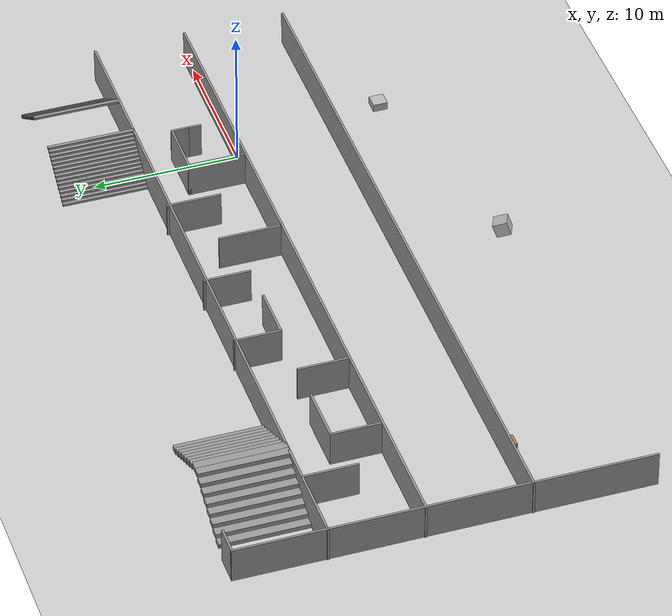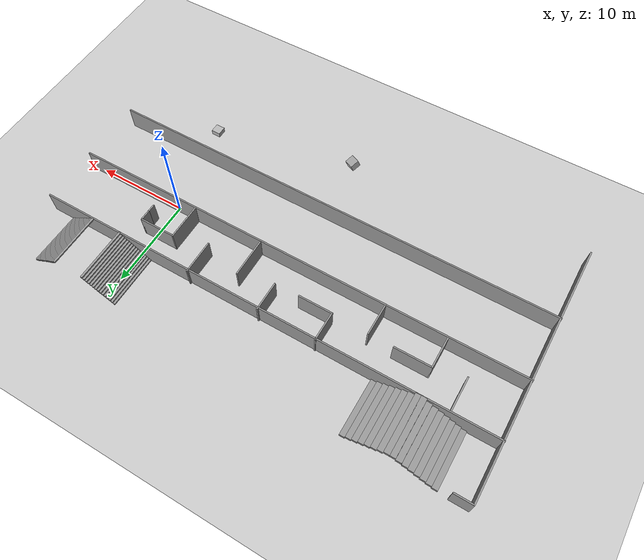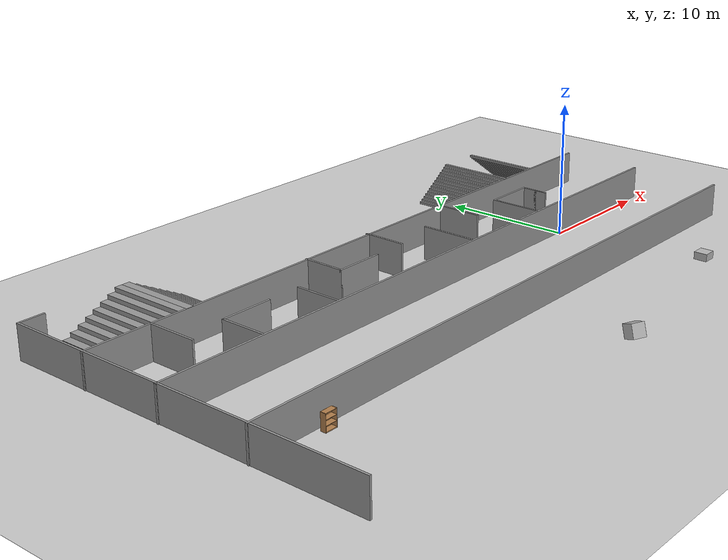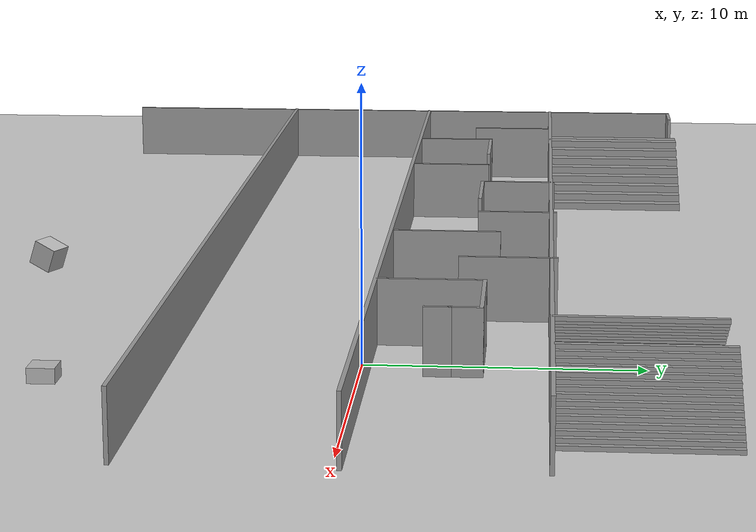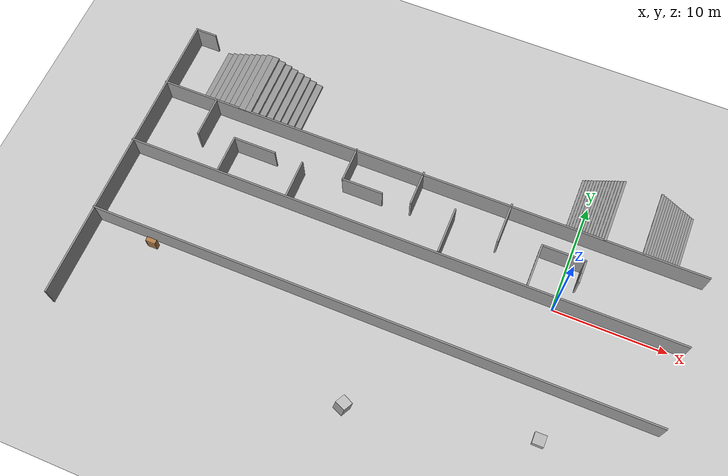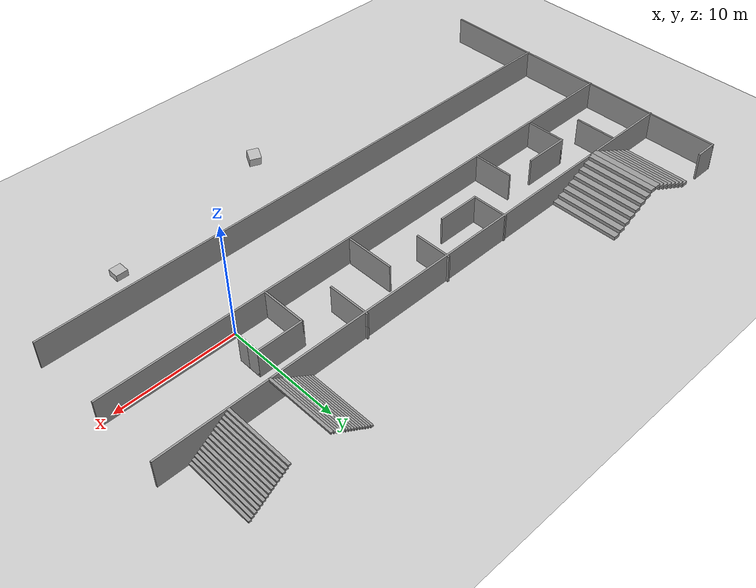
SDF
<sdf version="1.7">
 <world name="default">
  <model name="ground_plane">
   <static>1</static>
   <link name="link">
    <collision name="collision">
     <geometry><plane><normal>0 0 1</normal><size>100 100</size></plane></geometry>
     <surface>
      <contact><collide_bitmask>65535</collide_bitmask></contact>
      <friction><ode><mu>100</mu><mu2>50</mu2></ode></friction>
     </surface>
    </collision>
    <visual name="visual">
     <cast_shadows>0</cast_shadows>
     <geometry><plane><normal>0 0 1</normal><size>100 100</size></plane></geometry>
     <material>
      <script><uri>file://media/materials/scripts/gazebo.material</uri><name>Gazebo/Grey</name></script>
     </material>
    </visual>
   </link>
  </model>
  <model name="Parkour_0">
   <pose>2.61354 -1.10314 0 0 -0 0</pose>
   <link name="Stairs_0">
    <visual name="Stairs_0_Visual_0">
     <pose>6.1312 10.7342 0.083333 0 -0 -1.5708</pose>
     <geometry><box><size>5.922 0.233333 0.166667</size></box></geometry>
     <material>
      <script><uri>file://media/materials/scripts/gazebo.material</uri><name>Gazebo/Grey</name></script>
      <ambient>1 1 1 1</ambient>
     </material>
     <meta><layer>0</layer></meta>
    </visual>
    <collision name="Stairs_0_Collision_0">
     <geometry><box><size>5.922 0.233333 0.166667</size></box></geometry>
     <pose>6.1312 10.7342 0.083333 0 -0 -1.5708</pose>
    </collision>
    <visual name="Stairs_0_Visual_1">
     <pose>5.89787 10.7342 0.25 0 -0 -1.5708</pose>
     <geometry><box><size>5.922 0.233333 0.166667</size></box></geometry>
     <material>
      <script><uri>file://media/materials/scripts/gazebo.material</uri><name>Gazebo/Grey</name></script>
      <ambient>1 1 1 1</ambient>
     </material>
     <meta><layer>0</layer></meta>
    </visual>
    <collision name="Stairs_0_Collision_1">
     <geometry><box><size>5.922 0.233333 0.166667</size></box></geometry>
     <pose>5.89787 10.7342 0.25 0 -0 -1.5708</pose>
    </collision>
    <visual name="Stairs_0_Visual_2">
     <pose>5.66454 10.7342 0.416667 0 -0 -1.5708</pose>
     <geometry><box><size>5.922 0.233333 0.166667</size></box></geometry>
     <material>
      <script><uri>file://media/materials/scripts/gazebo.material</uri><name>Gazebo/Grey</name></script>
      <ambient>1 1 1 1</ambient>
     </material>
     <meta><layer>0</layer></meta>
    </visual>
    <collision name="Stairs_0_Collision_2">
     <geometry><box><size>5.922 0.233333 0.166667</size></box></geometry>
     <pose>5.66454 10.7342 0.416667 0 -0 -1.5708</pose>
    </collision>
    <visual name="Stairs_0_Visual_3">
     <pose>5.43121 10.7342 0.583333 0 -0 -1.5708</pose>
     <geometry><box><size>5.922 0.233333 0.166667</size></box></geometry>
     <material>
      <script><uri>file://media/materials/scripts/gazebo.material</uri><name>Gazebo/Grey</name></script>
      <ambient>1 1 1 1</ambient>
     </material>
     <meta><layer>0</layer></meta>
    </visual>
    <collision name="Stairs_0_Collision_3">
     <geometry><box><size>5.922 0.233333 0.166667</size></box></geometry>
     <pose>5.43121 10.7342 0.583333 0 -0 -1.5708</pose>
    </collision>
    <visual name="Stairs_0_Visual_4">
     <pose>5.19787 10.7342 0.75 0 -0 -1.5708</pose>
     <geometry><box><size>5.922 0.233333 0.166667</size></box></geometry>
     <material>
      <script><uri>file://media/materials/scripts/gazebo.material</uri><name>Gazebo/Grey</name></script>
      <ambient>1 1 1 1</ambient>
     </material>
     <meta><layer>0</layer></meta>
    </visual>
    <collision name="Stairs_0_Collision_4">
     <geometry><box><size>5.922 0.233333 0.166667</size></box></geometry>
     <pose>5.19787 10.7342 0.75 0 -0 -1.5708</pose>
    </collision>
    <visual name="Stairs_0_Visual_5">
     <pose>4.96454 10.7342 0.916667 0 -0 -1.5708</pose>
     <geometry><box><size>5.922 0.233333 0.166667</size></box></geometry>
     <material>
      <script><uri>file://media/materials/scripts/gazebo.material</uri><name>Gazebo/Grey</name></script>
      <ambient>1 1 1 1</ambient>
     </material>
     <meta><layer>0</layer></meta>
    </visual>
    <collision name="Stairs_0_Collision_5">
     <geometry><box><size>5.922 0.233333 0.166667</size></box></geometry>
     <pose>4.96454 10.7342 0.916667 0 -0 -1.5708</pose>
    </collision>
    <visual name="Stairs_0_Visual_6">
     <pose>4.73121 10.7342 1.08333 0 -0 -1.5708</pose>
     <geometry><box><size>5.922 0.233333 0.166667</size></box></geometry>
     <material>
      <script><uri>file://media/materials/scripts/gazebo.material</uri><name>Gazebo/Grey</name></script>
      <ambient>1 1 1 1</ambient>
     </material>
     <meta><layer>0</layer></meta>
    </visual>
    <collision name="Stairs_0_Collision_6">
     <geometry><box><size>5.922 0.233333 0.166667</size></box></geometry>
     <pose>4.73121 10.7342 1.08333 0 -0 -1.5708</pose>
    </collision>
    <visual name="Stairs_0_Visual_7">
     <pose>4.49787 10.7342 1.25 0 -0 -1.5708</pose>
     <geometry><box><size>5.922 0.233333 0.166667</size></box></geometry>
     <material>
      <script><uri>file://media/materials/scripts/gazebo.material</uri><name>Gazebo/Grey</name></script>
      <ambient>1 1 1 1</ambient>
     </material>
     <meta><layer>0</layer></meta>
    </visual>
    <collision name="Stairs_0_Collision_7">
     <geometry><box><size>5.922 0.233333 0.166667</size></box></geometry>
     <pose>4.49787 10.7342 1.25 0 -0 -1.5708</pose>
    </collision>
    <visual name="Stairs_0_Visual_8">
     <pose>4.26454 10.7342 1.41667 0 -0 -1.5708</pose>
     <geometry><box><size>5.922 0.233333 0.166667</size></box></geometry>
     <material>
      <script><uri>file://media/materials/scripts/gazebo.material</uri><name>Gazebo/Grey</name></script>
      <ambient>1 1 1 1</ambient>
     </material>
     <meta><layer>0</layer></meta>
    </visual>
    <collision name="Stairs_0_Collision_8">
     <geometry><box><size>5.922 0.233333 0.166667</size></box></geometry>
     <pose>4.26454 10.7342 1.41667 0 -0 -1.5708</pose>
    </collision>
    <visual name="Stairs_0_Visual_9">
     <pose>4.0312 10.7342 1.58333 0 -0 -1.5708</pose>
     <geometry><box><size>5.922 0.233333 0.166667</size></box></geometry>
     <material>
      <script><uri>file://media/materials/scripts/gazebo.material</uri><name>Gazebo/Grey</name></script>
      <ambient>1 1 1 1</ambient>
     </material>
     <meta><layer>0</layer></meta>
    </visual>
    <collision name="Stairs_0_Collision_9">
     <geometry><box><size>5.922 0.233333 0.166667</size></box></geometry>
     <pose>4.0312 10.7342 1.58333 0 -0 -1.5708</pose>
    </collision>
    <visual name="Stairs_0_Visual_10">
     <pose>3.79787 10.7342 1.75 0 -0 -1.5708</pose>
     <geometry><box><size>5.922 0.233333 0.166667</size></box></geometry>
     <material>
      <script><uri>file://media/materials/scripts/gazebo.material</uri><name>Gazebo/Grey</name></script>
      <ambient>1 1 1 1</ambient>
     </material>
     <meta><layer>0</layer></meta>
    </visual>
    <collision name="Stairs_0_Collision_10">
     <geometry><box><size>5.922 0.233333 0.166667</size></box></geometry>
     <pose>3.79787 10.7342 1.75 0 -0 -1.5708</pose>
    </collision>
    <visual name="Stairs_0_Visual_11">
     <pose>3.56454 10.7342 1.91667 0 -0 -1.5708</pose>
     <geometry><box><size>5.922 0.233333 0.166667</size></box></geometry>
     <material>
      <script><uri>file://media/materials/scripts/gazebo.material</uri><name>Gazebo/Grey</name></script>
      <ambient>1 1 1 1</ambient>
     </material>
     <meta><layer>0</layer></meta>
    </visual>
    <collision name="Stairs_0_Collision_11">
     <geometry><box><size>5.922 0.233333 0.166667</size></box></geometry>
     <pose>3.56454 10.7342 1.91667 0 -0 -1.5708</pose>
    </collision>
    <visual name="Stairs_0_Visual_12">
     <pose>3.3312 10.7342 2.08333 0 -0 -1.5708</pose>
     <geometry><box><size>5.922 0.233333 0.166667</size></box></geometry>
     <material>
      <script><uri>file://media/materials/scripts/gazebo.material</uri><name>Gazebo/Grey</name></script>
      <ambient>1 1 1 1</ambient>
     </material>
     <meta><layer>0</layer></meta>
    </visual>
    <collision name="Stairs_0_Collision_12">
     <geometry><box><size>5.922 0.233333 0.166667</size></box></geometry>
     <pose>3.3312 10.7342 2.08333 0 -0 -1.5708</pose>
    </collision>
    <visual name="Stairs_0_Visual_13">
     <pose>3.09787 10.7342 2.25 0 -0 -1.5708</pose>
     <geometry><box><size>5.922 0.233333 0.166667</size></box></geometry>
     <material>
      <script><uri>file://media/materials/scripts/gazebo.material</uri><name>Gazebo/Grey</name></script>
      <ambient>1 1 1 1</ambient>
     </material>
     <meta><layer>0</layer></meta>
    </visual>
    <collision name="Stairs_0_Collision_13">
     <geometry><box><size>5.922 0.233333 0.166667</size></box></geometry>
     <pose>3.09787 10.7342 2.25 0 -0 -1.5708</pose>
    </collision>
    <visual name="Stairs_0_Visual_14">
     <pose>2.86454 10.7342 2.41667 0 -0 -1.5708</pose>
     <geometry><box><size>5.922 0.233333 0.166667</size></box></geometry>
     <material>
      <script><uri>file://media/materials/scripts/gazebo.material</uri><name>Gazebo/Grey</name></script>
      <ambient>1 1 1 1</ambient>
     </material>
     <meta><layer>0</layer></meta>
    </visual>
    <collision name="Stairs_0_Collision_14">
     <geometry><box><size>5.922 0.233333 0.166667</size></box></geometry>
     <pose>2.86454 10.7342 2.41667 0 -0 -1.5708</pose>
    </collision>
   </link>
   <link name="Stairs_1">
    <visual name="Stairs_1_Visual_0">
     <pose>-3.78047 10.7035 0.083333 0 -0 1.5708</pose>
     <geometry><box><size>5.98376 0.233333 0.166667</size></box></geometry>
     <material>
      <script><uri>file://media/materials/scripts/gazebo.material</uri><name>Gazebo/Grey</name></script>
      <ambient>1 1 1 1</ambient>
     </material>
     <meta><layer>0</layer></meta>
    </visual>
    <collision name="Stairs_1_Collision_0">
     <geometry><box><size>5.98376 0.233333 0.166667</size></box></geometry>
     <pose>-3.78047 10.7035 0.083333 0 -0 1.5708</pose>
    </collision>
    <visual name="Stairs_1_Visual_1">
     <pose>-3.54714 10.7035 0.25 0 -0 1.5708</pose>
     <geometry><box><size>5.98376 0.233333 0.166667</size></box></geometry>
     <material>
      <script><uri>file://media/materials/scripts/gazebo.material</uri><name>Gazebo/Grey</name></script>
      <ambient>1 1 1 1</ambient>
     </material>
     <meta><layer>0</layer></meta>
    </visual>
    <collision name="Stairs_1_Collision_1">
     <geometry><box><size>5.98376 0.233333 0.166667</size></box></geometry>
     <pose>-3.54714 10.7035 0.25 0 -0 1.5708</pose>
    </collision>
    <visual name="Stairs_1_Visual_2">
     <pose>-3.31381 10.7035 0.416667 0 -0 1.5708</pose>
     <geometry><box><size>5.98376 0.233333 0.166667</size></box></geometry>
     <material>
      <script><uri>file://media/materials/scripts/gazebo.material</uri><name>Gazebo/Grey</name></script>
      <ambient>1 1 1 1</ambient>
     </material>
     <meta><layer>0</layer></meta>
    </visual>
    <collision name="Stairs_1_Collision_2">
     <geometry><box><size>5.98376 0.233333 0.166667</size></box></geometry>
     <pose>-3.31381 10.7035 0.416667 0 -0 1.5708</pose>
    </collision>
    <visual name="Stairs_1_Visual_3">
     <pose>-3.08047 10.7035 0.583333 0 -0 1.5708</pose>
     <geometry><box><size>5.98376 0.233333 0.166667</size></box></geometry>
     <material>
      <script><uri>file://media/materials/scripts/gazebo.material</uri><name>Gazebo/Grey</name></script>
      <ambient>1 1 1 1</ambient>
     </material>
     <meta><layer>0</layer></meta>
    </visual>
    <collision name="Stairs_1_Collision_3">
     <geometry><box><size>5.98376 0.233333 0.166667</size></box></geometry>
     <pose>-3.08047 10.7035 0.583333 0 -0 1.5708</pose>
    </collision>
    <visual name="Stairs_1_Visual_4">
     <pose>-2.84714 10.7035 0.75 0 -0 1.5708</pose>
     <geometry><box><size>5.98376 0.233333 0.166667</size></box></geometry>
     <material>
      <script><uri>file://media/materials/scripts/gazebo.material</uri><name>Gazebo/Grey</name></script>
      <ambient>1 1 1 1</ambient>
     </material>
     <meta><layer>0</layer></meta>
    </visual>
    <collision name="Stairs_1_Collision_4">
     <geometry><box><size>5.98376 0.233333 0.166667</size></box></geometry>
     <pose>-2.84714 10.7035 0.75 0 -0 1.5708</pose>
    </collision>
    <visual name="Stairs_1_Visual_5">
     <pose>-2.61381 10.7035 0.916667 0 -0 1.5708</pose>
     <geometry><box><size>5.98376 0.233333 0.166667</size></box></geometry>
     <material>
      <script><uri>file://media/materials/scripts/gazebo.material</uri><name>Gazebo/Grey</name></script>
      <ambient>1 1 1 1</ambient>
     </material>
     <meta><layer>0</layer></meta>
    </visual>
    <collision name="Stairs_1_Collision_5">
     <geometry><box><size>5.98376 0.233333 0.166667</size></box></geometry>
     <pose>-2.61381 10.7035 0.916667 0 -0 1.5708</pose>
    </collision>
    <visual name="Stairs_1_Visual_6">
     <pose>-2.38047 10.7035 1.08333 0 -0 1.5708</pose>
     <geometry><box><size>5.98376 0.233333 0.166667</size></box></geometry>
     <material>
      <script><uri>file://media/materials/scripts/gazebo.material</uri><name>Gazebo/Grey</name></script>
      <ambient>1 1 1 1</ambient>
     </material>
     <meta><layer>0</layer></meta>
    </visual>
    <collision name="Stairs_1_Collision_6">
     <geometry><box><size>5.98376 0.233333 0.166667</size></box></geometry>
     <pose>-2.38047 10.7035 1.08333 0 -0 1.5708</pose>
    </collision>
    <visual name="Stairs_1_Visual_7">
     <pose>-2.14714 10.7035 1.25 0 -0 1.5708</pose>
     <geometry><box><size>5.98376 0.233333 0.166667</size></box></geometry>
     <material>
      <script><uri>file://media/materials/scripts/gazebo.material</uri><name>Gazebo/Grey</name></script>
      <ambient>1 1 1 1</ambient>
     </material>
     <meta><layer>0</layer></meta>
    </visual>
    <collision name="Stairs_1_Collision_7">
     <geometry><box><size>5.98376 0.233333 0.166667</size></box></geometry>
     <pose>-2.14714 10.7035 1.25 0 -0 1.5708</pose>
    </collision>
    <visual name="Stairs_1_Visual_8">
     <pose>-1.91381 10.7035 1.41667 0 -0 1.5708</pose>
     <geometry><box><size>5.98376 0.233333 0.166667</size></box></geometry>
     <material>
      <script><uri>file://media/materials/scripts/gazebo.material</uri><name>Gazebo/Grey</name></script>
      <ambient>1 1 1 1</ambient>
     </material>
     <meta><layer>0</layer></meta>
    </visual>
    <collision name="Stairs_1_Collision_8">
     <geometry><box><size>5.98376 0.233333 0.166667</size></box></geometry>
     <pose>-1.91381 10.7035 1.41667 0 -0 1.5708</pose>
    </collision>
    <visual name="Stairs_1_Visual_9">
     <pose>-1.68047 10.7035 1.58333 0 -0 1.5708</pose>
     <geometry><box><size>5.98376 0.233333 0.166667</size></box></geometry>
     <material>
      <script><uri>file://media/materials/scripts/gazebo.material</uri><name>Gazebo/Grey</name></script>
      <ambient>1 1 1 1</ambient>
     </material>
     <meta><layer>0</layer></meta>
    </visual>
    <collision name="Stairs_1_Collision_9">
     <geometry><box><size>5.98376 0.233333 0.166667</size></box></geometry>
     <pose>-1.68047 10.7035 1.58333 0 -0 1.5708</pose>
    </collision>
    <visual name="Stairs_1_Visual_10">
     <pose>-1.44714 10.7035 1.75 0 -0 1.5708</pose>
     <geometry><box><size>5.98376 0.233333 0.166667</size></box></geometry>
     <material>
      <script><uri>file://media/materials/scripts/gazebo.material</uri><name>Gazebo/Grey</name></script>
      <ambient>1 1 1 1</ambient>
     </material>
     <meta><layer>0</layer></meta>
    </visual>
    <collision name="Stairs_1_Collision_10">
     <geometry><box><size>5.98376 0.233333 0.166667</size></box></geometry>
     <pose>-1.44714 10.7035 1.75 0 -0 1.5708</pose>
    </collision>
    <visual name="Stairs_1_Visual_11">
     <pose>-1.21381 10.7035 1.91667 0 -0 1.5708</pose>
     <geometry><box><size>5.98376 0.233333 0.166667</size></box></geometry>
     <material>
      <script><uri>file://media/materials/scripts/gazebo.material</uri><name>Gazebo/Grey</name></script>
      <ambient>1 1 1 1</ambient>
     </material>
     <meta><layer>0</layer></meta>
    </visual>
    <collision name="Stairs_1_Collision_11">
     <geometry><box><size>5.98376 0.233333 0.166667</size></box></geometry>
     <pose>-1.21381 10.7035 1.91667 0 -0 1.5708</pose>
    </collision>
    <visual name="Stairs_1_Visual_12">
     <pose>-0.980473 10.7035 2.08333 0 -0 1.5708</pose>
     <geometry><box><size>5.98376 0.233333 0.166667</size></box></geometry>
     <material>
      <script><uri>file://media/materials/scripts/gazebo.material</uri><name>Gazebo/Grey</name></script>
      <ambient>1 1 1 1</ambient>
     </material>
     <meta><layer>0</layer></meta>
    </visual>
    <collision name="Stairs_1_Collision_12">
     <geometry><box><size>5.98376 0.233333 0.166667</size></box></geometry>
     <pose>-0.980473 10.7035 2.08333 0 -0 1.5708</pose>
    </collision>
    <visual name="Stairs_1_Visual_13">
     <pose>-0.74714 10.7035 2.25 0 -0 1.5708</pose>
     <geometry><box><size>5.98376 0.233333 0.166667</size></box></geometry>
     <material>
      <script><uri>file://media/materials/scripts/gazebo.material</uri><name>Gazebo/Grey</name></script>
      <ambient>1 1 1 1</ambient>
     </material>
     <meta><layer>0</layer></meta>
    </visual>
    <collision name="Stairs_1_Collision_13">
     <geometry><box><size>5.98376 0.233333 0.166667</size></box></geometry>
     <pose>-0.74714 10.7035 2.25 0 -0 1.5708</pose>
    </collision>
    <visual name="Stairs_1_Visual_14">
     <pose>-0.513806 10.7035 2.41667 0 -0 1.5708</pose>
     <geometry><box><size>5.98376 0.233333 0.166667</size></box></geometry>
     <material>
      <script><uri>file://media/materials/scripts/gazebo.material</uri><name>Gazebo/Grey</name></script>
      <ambient>1 1 1 1</ambient>
     </material>
     <meta><layer>0</layer></meta>
    </visual>
    <collision name="Stairs_1_Collision_14">
     <geometry><box><size>5.98376 0.233333 0.166667</size></box></geometry>
     <pose>-0.513806 10.7035 2.41667 0 -0 1.5708</pose>
    </collision>
   </link>
   <link name="Stairs_2">
    <visual name="Stairs_2_Visual_0">
     <pose>-38.5274 10.758 0.15625 0 -0 1.5708</pose>
     <geometry><box><size>6.14 0.612955 0.3125</size></box></geometry>
     <material>
      <script><uri>file://media/materials/scripts/gazebo.material</uri><name>Gazebo/Grey</name></script>
      <ambient>1 1 1 1</ambient>
     </material>
     <meta><layer>0</layer></meta>
    </visual>
    <collision name="Stairs_2_Collision_0">
     <geometry><box><size>6.14 0.612955 0.3125</size></box></geometry>
     <pose>-38.5274 10.758 0.15625 0 -0 1.5708</pose>
    </collision>
    <visual name="Stairs_2_Visual_1">
     <pose>-37.9145 10.758 0.46875 0 -0 1.5708</pose>
     <geometry><box><size>6.14 0.612955 0.3125</size></box></geometry>
     <material>
      <script><uri>file://media/materials/scripts/gazebo.material</uri><name>Gazebo/Grey</name></script>
      <ambient>1 1 1 1</ambient>
     </material>
     <meta><layer>0</layer></meta>
    </visual>
    <collision name="Stairs_2_Collision_1">
     <geometry><box><size>6.14 0.612955 0.3125</size></box></geometry>
     <pose>-37.9145 10.758 0.46875 0 -0 1.5708</pose>
    </collision>
    <visual name="Stairs_2_Visual_2">
     <pose>-37.3015 10.758 0.78125 0 -0 1.5708</pose>
     <geometry><box><size>6.14 0.612955 0.3125</size></box></geometry>
     <material>
      <script><uri>file://media/materials/scripts/gazebo.material</uri><name>Gazebo/Grey</name></script>
      <ambient>1 1 1 1</ambient>
     </material>
     <meta><layer>0</layer></meta>
    </visual>
    <collision name="Stairs_2_Collision_2">
     <geometry><box><size>6.14 0.612955 0.3125</size></box></geometry>
     <pose>-37.3015 10.758 0.78125 0 -0 1.5708</pose>
    </collision>
    <visual name="Stairs_2_Visual_3">
     <pose>-36.6885 10.758 1.09375 0 -0 1.5708</pose>
     <geometry><box><size>6.14 0.612955 0.3125</size></box></geometry>
     <material>
      <script><uri>file://media/materials/scripts/gazebo.material</uri><name>Gazebo/Grey</name></script>
      <ambient>1 1 1 1</ambient>
     </material>
     <meta><layer>0</layer></meta>
    </visual>
    <collision name="Stairs_2_Collision_3">
     <geometry><box><size>6.14 0.612955 0.3125</size></box></geometry>
     <pose>-36.6885 10.758 1.09375 0 -0 1.5708</pose>
    </collision>
    <visual name="Stairs_2_Visual_4">
     <pose>-36.0756 10.758 1.40625 0 -0 1.5708</pose>
     <geometry><box><size>6.14 0.612955 0.3125</size></box></geometry>
     <material>
      <script><uri>file://media/materials/scripts/gazebo.material</uri><name>Gazebo/Grey</name></script>
      <ambient>1 1 1 1</ambient>
     </material>
     <meta><layer>0</layer></meta>
    </visual>
    <collision name="Stairs_2_Collision_4">
     <geometry><box><size>6.14 0.612955 0.3125</size></box></geometry>
     <pose>-36.0756 10.758 1.40625 0 -0 1.5708</pose>
    </collision>
    <visual name="Stairs_2_Visual_5">
     <pose>-35.4626 10.758 1.71875 0 -0 1.5708</pose>
     <geometry><box><size>6.14 0.612955 0.3125</size></box></geometry>
     <material>
      <script><uri>file://media/materials/scripts/gazebo.material</uri><name>Gazebo/Grey</name></script>
      <ambient>1 1 1 1</ambient>
     </material>
     <meta><layer>0</layer></meta>
    </visual>
    <collision name="Stairs_2_Collision_5">
     <geometry><box><size>6.14 0.612955 0.3125</size></box></geometry>
     <pose>-35.4626 10.758 1.71875 0 -0 1.5708</pose>
    </collision>
    <visual name="Stairs_2_Visual_6">
     <pose>-34.8497 10.758 2.03125 0 -0 1.5708</pose>
     <geometry><box><size>6.14 0.612955 0.3125</size></box></geometry>
     <material>
      <script><uri>file://media/materials/scripts/gazebo.material</uri><name>Gazebo/Grey</name></script>
      <ambient>1 1 1 1</ambient>
     </material>
     <meta><layer>0</layer></meta>
    </visual>
    <collision name="Stairs_2_Collision_6">
     <geometry><box><size>6.14 0.612955 0.3125</size></box></geometry>
     <pose>-34.8497 10.758 2.03125 0 -0 1.5708</pose>
    </collision>
    <visual name="Stairs_2_Visual_7">
     <pose>-34.2367 10.758 2.34375 0 -0 1.5708</pose>
     <geometry><box><size>6.14 0.612955 0.3125</size></box></geometry>
     <material>
      <script><uri>file://media/materials/scripts/gazebo.material</uri><name>Gazebo/Grey</name></script>
      <ambient>1 1 1 1</ambient>
     </material>
     <meta><layer>0</layer></meta>
    </visual>
    <collision name="Stairs_2_Collision_7">
     <geometry><box><size>6.14 0.612955 0.3125</size></box></geometry>
     <pose>-34.2367 10.758 2.34375 0 -0 1.5708</pose>
    </collision>
   </link>
   <link name="Stairs_3">
    <visual name="Stairs_3_Visual_0">
     <pose>-29.4585 10.758 0.15625 0 0 -1.5708</pose>
     <geometry><box><size>6.14 0.601258 0.3125</size></box></geometry>
     <material>
      <script><uri>file://media/materials/scripts/gazebo.material</uri><name>Gazebo/Grey</name></script>
      <ambient>1 1 1 1</ambient>
     </material>
     <meta><layer>0</layer></meta>
    </visual>
    <collision name="Stairs_3_Collision_0">
     <geometry><box><size>6.14 0.601258 0.3125</size></box></geometry>
     <pose>-29.4585 10.758 0.15625 0 0 -1.5708</pose>
    </collision>
    <visual name="Stairs_3_Visual_1">
     <pose>-30.0597 10.758 0.46875 0 0 -1.5708</pose>
     <geometry><box><size>6.14 0.601258 0.3125</size></box></geometry>
     <material>
      <script><uri>file://media/materials/scripts/gazebo.material</uri><name>Gazebo/Grey</name></script>
      <ambient>1 1 1 1</ambient>
     </material>
     <meta><layer>0</layer></meta>
    </visual>
    <collision name="Stairs_3_Collision_1">
     <geometry><box><size>6.14 0.601258 0.3125</size></box></geometry>
     <pose>-30.0597 10.758 0.46875 0 0 -1.5708</pose>
    </collision>
    <visual name="Stairs_3_Visual_2">
     <pose>-30.661 10.758 0.78125 0 0 -1.5708</pose>
     <geometry><box><size>6.14 0.601258 0.3125</size></box></geometry>
     <material>
      <script><uri>file://media/materials/scripts/gazebo.material</uri><name>Gazebo/Grey</name></script>
      <ambient>1 1 1 1</ambient>
     </material>
     <meta><layer>0</layer></meta>
    </visual>
    <collision name="Stairs_3_Collision_2">
     <geometry><box><size>6.14 0.601258 0.3125</size></box></geometry>
     <pose>-30.661 10.758 0.78125 0 0 -1.5708</pose>
    </collision>
    <visual name="Stairs_3_Visual_3">
     <pose>-31.2623 10.758 1.09375 0 0 -1.5708</pose>
     <geometry><box><size>6.14 0.601258 0.3125</size></box></geometry>
     <material>
      <script><uri>file://media/materials/scripts/gazebo.material</uri><name>Gazebo/Grey</name></script>
      <ambient>1 1 1 1</ambient>
     </material>
     <meta><layer>0</layer></meta>
    </visual>
    <collision name="Stairs_3_Collision_3">
     <geometry><box><size>6.14 0.601258 0.3125</size></box></geometry>
     <pose>-31.2623 10.758 1.09375 0 0 -1.5708</pose>
    </collision>
    <visual name="Stairs_3_Visual_4">
     <pose>-31.8635 10.758 1.40625 0 0 -1.5708</pose>
     <geometry><box><size>6.14 0.601258 0.3125</size></box></geometry>
     <material>
      <script><uri>file://media/materials/scripts/gazebo.material</uri><name>Gazebo/Grey</name></script>
      <ambient>1 1 1 1</ambient>
     </material>
     <meta><layer>0</layer></meta>
    </visual>
    <collision name="Stairs_3_Collision_4">
     <geometry><box><size>6.14 0.601258 0.3125</size></box></geometry>
     <pose>-31.8635 10.758 1.40625 0 0 -1.5708</pose>
    </collision>
    <visual name="Stairs_3_Visual_5">
     <pose>-32.4648 10.758 1.71875 0 0 -1.5708</pose>
     <geometry><box><size>6.14 0.601258 0.3125</size></box></geometry>
     <material>
      <script><uri>file://media/materials/scripts/gazebo.material</uri><name>Gazebo/Grey</name></script>
      <ambient>1 1 1 1</ambient>
     </material>
     <meta><layer>0</layer></meta>
    </visual>
    <collision name="Stairs_3_Collision_5">
     <geometry><box><size>6.14 0.601258 0.3125</size></box></geometry>
     <pose>-32.4648 10.758 1.71875 0 0 -1.5708</pose>
    </collision>
    <visual name="Stairs_3_Visual_6">
     <pose>-33.066 10.758 2.03125 0 0 -1.5708</pose>
     <geometry><box><size>6.14 0.601258 0.3125</size></box></geometry>
     <material>
      <script><uri>file://media/materials/scripts/gazebo.material</uri><name>Gazebo/Grey</name></script>
      <ambient>1 1 1 1</ambient>
     </material>
     <meta><layer>0</layer></meta>
    </visual>
    <collision name="Stairs_3_Collision_6">
     <geometry><box><size>6.14 0.601258 0.3125</size></box></geometry>
     <pose>-33.066 10.758 2.03125 0 0 -1.5708</pose>
    </collision>
    <visual name="Stairs_3_Visual_7">
     <pose>-33.6673 10.758 2.34375 0 0 -1.5708</pose>
     <geometry><box><size>6.14 0.601258 0.3125</size></box></geometry>
     <material>
      <script><uri>file://media/materials/scripts/gazebo.material</uri><name>Gazebo/Grey</name></script>
      <ambient>1 1 1 1</ambient>
     </material>
     <meta><layer>0</layer></meta>
    </visual>
    <collision name="Stairs_3_Collision_7">
     <geometry><box><size>6.14 0.601258 0.3125</size></box></geometry>
     <pose>-33.6673 10.758 2.34375 0 0 -1.5708</pose>
    </collision>
   </link>
   <link name="Wall_14">
    <collision name="Wall_14_Collision">
     <geometry><box><size>50.5 0.15 2.5</size></box></geometry>
     <pose>0 0 1.25 0 -0 0</pose>
    </collision>
    <visual name="Wall_14_Visual">
     <pose>0 0 1.25 0 -0 0</pose>
     <geometry><box><size>50.5 0.15 2.5</size></box></geometry>
     <material>
      <script><uri>file://media/materials/scripts/gazebo.material</uri><name>Gazebo/Grey</name></script>
      <ambient>1 1 1 1</ambient>
     </material>
     <meta><layer>0</layer></meta>
    </visual>
    <pose>-16.6525 7.72814 0 0 -0 0</pose>
   </link>
   <link name="Wall_16">
    <collision name="Wall_16_Collision">
     <geometry><box><size>50.5 0.15 2.5</size></box></geometry>
     <pose>0 0 1.25 0 -0 0</pose>
    </collision>
    <visual name="Wall_16_Visual">
     <pose>0 0 1.25 0 -0 0</pose>
     <geometry><box><size>50.5 0.15 2.5</size></box></geometry>
     <material>
      <script><uri>file://media/materials/scripts/gazebo.material</uri><name>Gazebo/Grey</name></script>
      <ambient>1 1 1 1</ambient>
     </material>
     <meta><layer>0</layer></meta>
    </visual>
    <pose>-16.653 1.36002 0 0 -0 0</pose>
   </link>
   <link name="Wall_18">
    <collision name="Wall_18_Collision">
     <geometry><box><size>50.5 0.15 2.5</size></box></geometry>
     <pose>0 0 1.25 0 -0 0</pose>
    </collision>
    <visual name="Wall_18_Visual">
     <pose>0 0 1.25 0 -0 0</pose>
     <geometry><box><size>50.5 0.15 2.5</size></box></geometry>
     <material>
      <script><uri>file://media/materials/scripts/gazebo.material</uri><name>Gazebo/Grey</name></script>
      <ambient>1 1 1 1</ambient>
     </material>
     <meta><layer>0</layer></meta>
    </visual>
    <pose>-16.653 -5.71568 0 0 -0 0</pose>
   </link>
   <link name="Wall_38">
    <collision name="Wall_38_Collision">
     <geometry><box><size>3.75 0.15 2.5</size></box></geometry>
     <pose>0 0 1.25 0 -0 0</pose>
    </collision>
    <visual name="Wall_38_Visual">
     <pose>0 0 1.25 0 -0 0</pose>
     <geometry><box><size>3.75 0.15 2.5</size></box></geometry>
     <material>
      <script><uri>file://media/materials/scripts/gazebo.material</uri><name>Gazebo/Grey</name></script>
      <ambient>1 1 1 1</ambient>
     </material>
     <meta><layer>0</layer></meta>
    </visual>
    <pose>-36.763 5.87297 0 0 -0 1.5708</pose>
   </link>
   <link name="Wall_40">
    <collision name="Wall_40_Collision">
     <geometry><box><size>3.5 0.15 2.5</size></box></geometry>
     <pose>0 0 1.25 0 -0 0</pose>
    </collision>
    <visual name="Wall_40_Visual">
     <pose>0 0 1.25 0 -0 0</pose>
     <geometry><box><size>3.5 0.15 2.5</size></box></geometry>
     <material>
      <script><uri>file://media/materials/scripts/gazebo.material</uri><name>Gazebo/Grey</name></script>
      <ambient>1 1 1 1</ambient>
     </material>
     <meta><layer>0</layer></meta>
    </visual>
    <pose>-33.5896 3.14411 0 0 -0 1.5708</pose>
   </link>
   <link name="Wall_41">
    <collision name="Wall_41_Collision">
     <geometry><box><size>4 0.15 2.5</size></box></geometry>
     <pose>0 0 1.25 0 -0 0</pose>
    </collision>
    <visual name="Wall_41_Visual">
     <pose>0 0 1.25 0 -0 0</pose>
     <geometry><box><size>4 0.15 2.5</size></box></geometry>
     <material>
      <script><uri>file://media/materials/scripts/gazebo.material</uri><name>Gazebo/Grey</name></script>
      <ambient>1 1 1 1</ambient>
     </material>
     <meta><layer>0</layer></meta>
    </visual>
    <pose>-31.6646 4.81911 0 0 -0 0</pose>
   </link>
   <link name="Wall_43">
    <collision name="Wall_43_Collision">
     <geometry><box><size>3.5 0.15 2.5</size></box></geometry>
     <pose>0 0 1.25 0 -0 0</pose>
    </collision>
    <visual name="Wall_43_Visual">
     <pose>0 0 1.25 0 -0 0</pose>
     <geometry><box><size>3.5 0.15 2.5</size></box></geometry>
     <material>
      <script><uri>file://media/materials/scripts/gazebo.material</uri><name>Gazebo/Grey</name></script>
      <ambient>1 1 1 1</ambient>
     </material>
     <meta><layer>0</layer></meta>
    </visual>
    <pose>-27.0799 3.14411 0 0 -0 1.5708</pose>
   </link>
   <link name="Wall_45">
    <collision name="Wall_45_Collision">
     <geometry><box><size>3.25 0.15 2.5</size></box></geometry>
     <pose>0 0 1.25 0 -0 0</pose>
    </collision>
    <visual name="Wall_45_Visual">
     <pose>0 0 1.25 0 -0 0</pose>
     <geometry><box><size>3.25 0.15 2.5</size></box></geometry>
     <material>
      <script><uri>file://media/materials/scripts/gazebo.material</uri><name>Gazebo/Grey</name></script>
      <ambient>1 1 1 1</ambient>
     </material>
     <meta><layer>0</layer></meta>
    </visual>
    <pose>-23.1742 6.26602 0 0 -0 -1.5708</pose>
   </link>
   <link name="Wall_46">
    <collision name="Wall_46_Collision">
     <geometry><box><size>3.75 0.15 2.5</size></box></geometry>
     <pose>0 0 1.25 0 -0 0</pose>
    </collision>
    <visual name="Wall_46_Visual">
     <pose>0 0 1.25 0 -0 0</pose>
     <geometry><box><size>3.75 0.15 2.5</size></box></geometry>
     <material>
      <script><uri>file://media/materials/scripts/gazebo.material</uri><name>Gazebo/Grey</name></script>
      <ambient>1 1 1 1</ambient>
     </material>
     <meta><layer>0</layer></meta>
    </visual>
    <pose>-21.3742 4.71602 0 0 -0 0</pose>
   </link>
   <link name="Wall_48">
    <collision name="Wall_48_Collision">
     <geometry><box><size>3.25 0.15 2.5</size></box></geometry>
     <pose>0 0 1.25 0 -0 0</pose>
    </collision>
    <visual name="Wall_48_Visual">
     <pose>0 0 1.25 0 -0 0</pose>
     <geometry><box><size>3.25 0.15 2.5</size></box></geometry>
     <material>
      <script><uri>file://media/materials/scripts/gazebo.material</uri><name>Gazebo/Grey</name></script>
      <ambient>1 1 1 1</ambient>
     </material>
     <meta><layer>0</layer></meta>
    </visual>
    <pose>-16.9086 6.34739 0 0 -0 -1.5708</pose>
   </link>
   <link name="Wall_5">
    <collision name="Wall_5_Collision">
     <geometry><box><size>28 0.15 2.5</size></box></geometry>
     <pose>0 0 1.25 0 -0 0</pose>
    </collision>
    <visual name="Wall_5_Visual">
     <pose>0 0 1.25 0 -0 0</pose>
     <geometry><box><size>28 0.15 2.5</size></box></geometry>
     <material>
      <script><uri>file://media/materials/scripts/gazebo.material</uri><name>Gazebo/Grey</name></script>
      <ambient>1 1 1 1</ambient>
     </material>
     <meta><layer>0</layer></meta>
    </visual>
    <pose>-41.772 -0.038302 0 0 -0 1.5708</pose>
   </link>
   <link name="Wall_50">
    <collision name="Wall_50_Collision">
     <geometry><box><size>4.25 0.15 2.5</size></box></geometry>
     <pose>0 0 1.25 0 -0 0</pose>
    </collision>
    <visual name="Wall_50_Visual">
     <pose>0 0 1.25 0 -0 0</pose>
     <geometry><box><size>4.25 0.15 2.5</size></box></geometry>
     <material>
      <script><uri>file://media/materials/scripts/gazebo.material</uri><name>Gazebo/Grey</name></script>
      <ambient>1 1 1 1</ambient>
     </material>
     <meta><layer>0</layer></meta>
    </visual>
    <pose>-13.1656 3.60048 0 0 -0 1.5708</pose>
   </link>
   <link name="Wall_52">
    <collision name="Wall_52_Collision">
     <geometry><box><size>3.75 0.15 2.5</size></box></geometry>
     <pose>0 0 1.25 0 -0 0</pose>
    </collision>
    <visual name="Wall_52_Visual">
     <pose>0 0 1.25 0 -0 0</pose>
     <geometry><box><size>3.75 0.15 2.5</size></box></geometry>
     <material>
      <script><uri>file://media/materials/scripts/gazebo.material</uri><name>Gazebo/Grey</name></script>
      <ambient>1 1 1 1</ambient>
     </material>
     <meta><layer>0</layer></meta>
    </visual>
    <pose>-8.85293 6.09739 0 0 -0 -1.5708</pose>
   </link>
   <link name="Wall_54">
    <collision name="Wall_54_Collision">
     <geometry><box><size>4 0.15 2.5</size></box></geometry>
     <pose>0 0 1.25 0 -0 0</pose>
    </collision>
    <visual name="Wall_54_Visual">
     <pose>0 0 1.25 0 -0 0</pose>
     <geometry><box><size>4 0.15 2.5</size></box></geometry>
     <material>
      <script><uri>file://media/materials/scripts/gazebo.material</uri><name>Gazebo/Grey</name></script>
      <ambient>1 1 1 1</ambient>
     </material>
     <meta><layer>0</layer></meta>
    </visual>
    <pose>-5.27262 3.39411 0 0 -0 1.5708</pose>
   </link>
   <link name="Wall_55">
    <collision name="Wall_55_Collision">
     <geometry><box><size>4 0.15 2.5</size></box></geometry>
     <pose>0 0 1.25 0 -0 0</pose>
    </collision>
    <visual name="Wall_55_Visual">
     <pose>0 0 1.25 0 -0 0</pose>
     <geometry><box><size>4 0.15 2.5</size></box></geometry>
     <material>
      <script><uri>file://media/materials/scripts/gazebo.material</uri><name>Gazebo/Grey</name></script>
      <ambient>1 1 1 1</ambient>
     </material>
     <meta><layer>0</layer></meta>
    </visual>
    <pose>-3.34762 5.31911 0 0 -0 0</pose>
   </link>
   <link name="Wall_56">
    <collision name="Wall_56_Collision">
     <geometry><box><size>1.25 0.15 2.5</size></box></geometry>
     <pose>0 0 1.25 0 -0 0</pose>
    </collision>
    <visual name="Wall_56_Visual">
     <pose>0 0 1.25 0 -0 0</pose>
     <geometry><box><size>1.25 0.15 2.5</size></box></geometry>
     <material>
      <script><uri>file://media/materials/scripts/gazebo.material</uri><name>Gazebo/Grey</name></script>
      <ambient>1 1 1 1</ambient>
     </material>
     <meta><layer>0</layer></meta>
    </visual>
    <pose>-1.42262 4.76911 0 0 -0 -1.5708</pose>
   </link>
   <link name="Wall_57">
    <collision name="Wall_57_Collision">
     <geometry><box><size>1 0.15 2.5</size></box></geometry>
     <pose>0 0 1.25 0 -0 0</pose>
    </collision>
    <visual name="Wall_57_Visual">
     <pose>0 0 1.25 0 -0 0</pose>
     <geometry><box><size>1 0.15 2.5</size></box></geometry>
     <material>
      <script><uri>file://media/materials/scripts/gazebo.material</uri><name>Gazebo/Grey</name></script>
      <ambient>1 1 1 1</ambient>
     </material>
     <meta><layer>0</layer></meta>
    </visual>
    <pose>-1.42262 3.79411 0 0 -0 -1.5708</pose>
   </link>
   <link name="Wall_6">
    <collision name="Wall_6_Collision">
     <geometry><box><size>2 0.15 2.5</size></box></geometry>
     <pose>0 0 1.25 0 -0 0</pose>
    </collision>
    <visual name="Wall_6_Visual">
     <pose>0 0 1.25 0 -0 0</pose>
     <geometry><box><size>2 0.15 2.5</size></box></geometry>
     <material>
      <script><uri>file://media/materials/scripts/gazebo.material</uri><name>Gazebo/Grey</name></script>
      <ambient>1 1 1 1</ambient>
     </material>
     <meta><layer>0</layer></meta>
    </visual>
    <pose>-40.847 13.8867 0 0 -0 0</pose>
   </link>
   <static>1</static>
  </model>
  <model name="test_box">
   <pose>-13.06 -14.2023 0.642206 -0.353605 0 -0.413962</pose>
   <link name="link">
    <collision name="collision"><geometry><box><size>1 1 1</size></box></geometry></collision>
    <visual name="visual"><geometry><box><size>1 1 1</size></box></geometry></visual>
    <inertial>
     <inertia><ixx>1</ixx><ixy>0</ixy><ixz>0</ixz><iyy>1</iyy><iyz>0</iyz><izz>1</izz></inertia>
     <mass>1</mass>
    </inertial>
   </link>
  </model>
  <model name="Backpack">
   <static>1</static>
   <link name="link">
    <collision name="collision"><geometry><box><size>1 1 1</size></box></geometry></collision>
    <visual name="visual"><geometry><box><size>1 1 1</size></box></geometry></visual>
   </link>
   <pose>2.40888 -10.804 0 0 -0 0</pose>
  </model>
  <model name="bookshelf">
   <static>1</static>
   <link name="link">
    <inertial><mass>1</mass></inertial>
    <collision name="back">
     <pose>0 0.005 0.6 0 -0 0</pose>
     <geometry><box><size>0.9 0.01 1.2</size></box></geometry>
    </collision>
    <visual name="visual1">
     <pose>0 0.005 0.6 0 -0 0</pose>
     <geometry><box><size>0.9 0.01 1.2</size></box></geometry>
     <material>
      <script><uri>file://media/materials/scripts/gazebo.material</uri><name>Gazebo/Wood</name></script>
     </material>
    </visual>
    <collision name="left_side">
     <pose>0.45 -0.195 0.6 0 -0 0</pose>
     <geometry><box><size>0.02 0.4 1.2</size></box></geometry>
    </collision>
    <visual name="visual2">
     <pose>0.45 -0.195 0.6 0 -0 0</pose>
     <geometry><box><size>0.02 0.4 1.2</size></box></geometry>
     <material>
      <script><uri>file://media/materials/scripts/gazebo.material</uri><name>Gazebo/Wood</name></script>
     </material>
    </visual>
    <collision name="right_side">
     <pose>-0.45 -0.195 0.6 0 -0 0</pose>
     <geometry><box><size>0.02 0.4 1.2</size></box></geometry>
    </collision>
    <visual name="visual3">
     <pose>-0.45 -0.195 0.6 0 -0 0</pose>
     <geometry><box><size>0.02 0.4 1.2</size></box></geometry>
     <material>
      <script><uri>file://media/materials/scripts/gazebo.material</uri><name>Gazebo/Wood</name></script>
     </material>
    </visual>
    <collision name="bottom">
     <pose>0 -0.195 0.03 0 -0 0</pose>
     <geometry><box><size>0.88 0.4 0.06</size></box></geometry>
    </collision>
    <visual name="visual4">
     <pose>0 -0.195 0.03 0 -0 0</pose>
     <geometry><box><size>0.88 0.4 0.06</size></box></geometry>
     <material>
      <script><uri>file://media/materials/scripts/gazebo.material</uri><name>Gazebo/Wood</name></script>
     </material>
    </visual>
    <collision name="top">
     <pose>0 -0.195 1.19 0 -0 0</pose>
     <geometry><box><size>0.88 0.4 0.02</size></box></geometry>
    </collision>
    <visual name="visual5">
     <pose>0 -0.195 1.19 0 -0 0</pose>
     <geometry><box><size>0.88 0.4 0.02</size></box></geometry>
     <material>
      <script><uri>file://media/materials/scripts/gazebo.material</uri><name>Gazebo/Wood</name></script>
     </material>
    </visual>
    <collision name="low_shelf">
     <pose>0 -0.195 0.43 0 -0 0</pose>
     <geometry><box><size>0.88 0.4 0.02</size></box></geometry>
    </collision>
    <visual name="visual6">
     <pose>0 -0.195 0.43 0 -0 0</pose>
     <geometry><box><size>0.88 0.4 0.02</size></box></geometry>
     <material>
      <script><uri>file://media/materials/scripts/gazebo.material</uri><name>Gazebo/Wood</name></script>
     </material>
    </visual>
    <collision name="high_shelf">
     <pose>0 -0.195 0.8 0 -0 0</pose>
     <geometry><box><size>0.88 0.4 0.02</size></box></geometry>
    </collision>
    <visual name="visual7">
     <pose>0 -0.195 0.8 0 -0 0</pose>
     <geometry><box><size>0.88 0.4 0.02</size></box></geometry>
     <material>
      <script><uri>file://media/materials/scripts/gazebo.material</uri><name>Gazebo/Wood</name></script>
     </material>
    </visual>
   </link>
   <pose>-33.7309 -7.19257 0 0 -0 0</pose>
  </model>
 </world>
</sdf>
